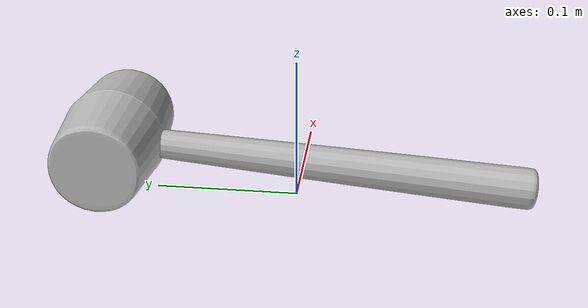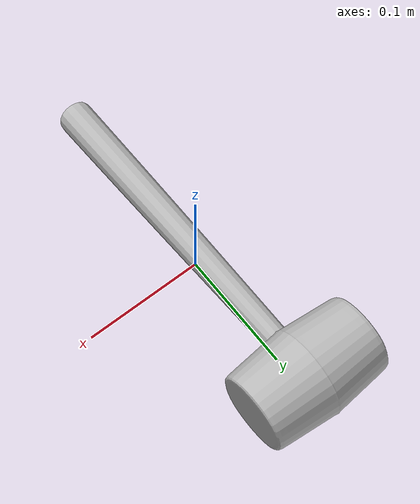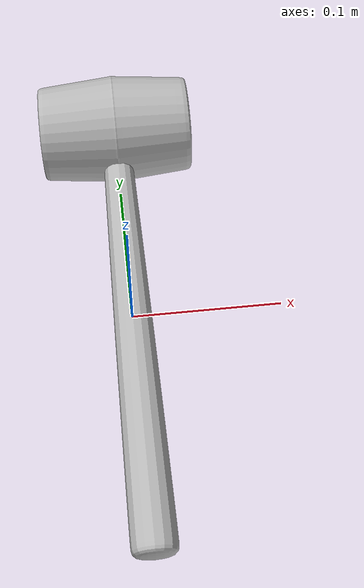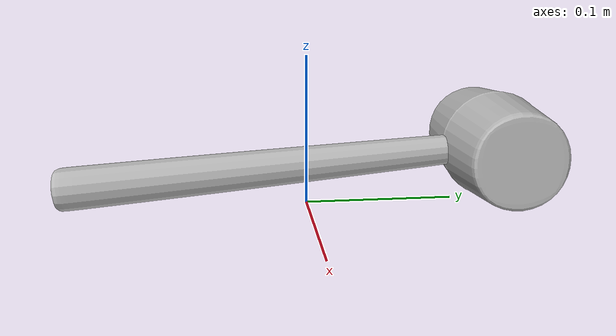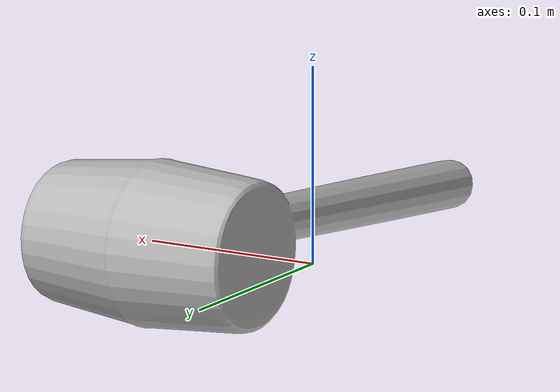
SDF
<?xml version="1.0"?>
<sdf version="1.7">
  <model name="desert">
    <static>true</static>
    <link name="main_link">
      <collision name="plane_collision">
        <geometry>
          <mesh>
            <uri>model://mallet/meshes/mallet.dae</uri>
          </mesh>
        </geometry>
      </collision>
      <visual name="plane_visual">
        <geometry>
          <mesh>
            <uri>model://mallet/meshes/mallet.dae</uri>
          </mesh>
        </geometry>
        <material>
          <script>
            <uri>model://mallet/materials/scripts</uri>
            <uri>model://mallet/materials/textures</uri>
            <name>Mallet/Material</name>
          </script>
        </material>
      </visual>
    </link>
  </model>
</sdf>
